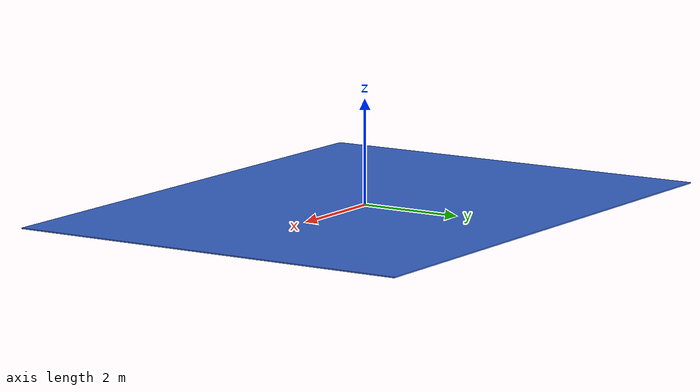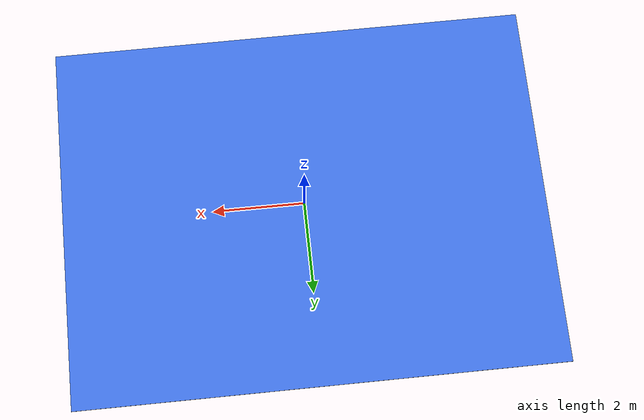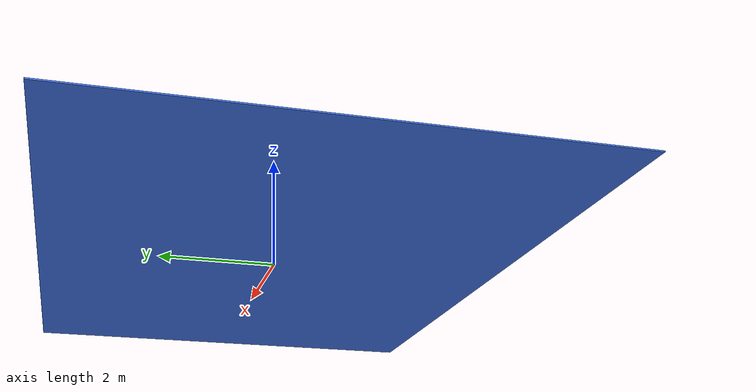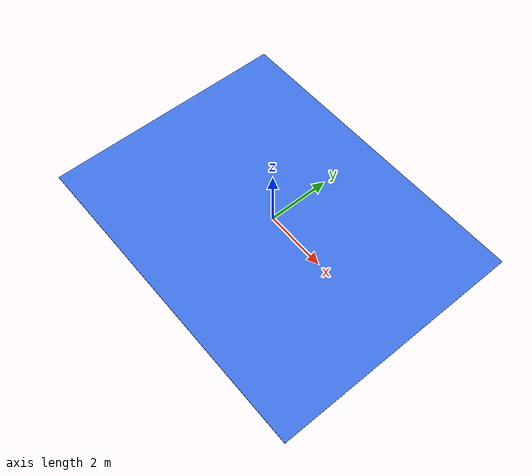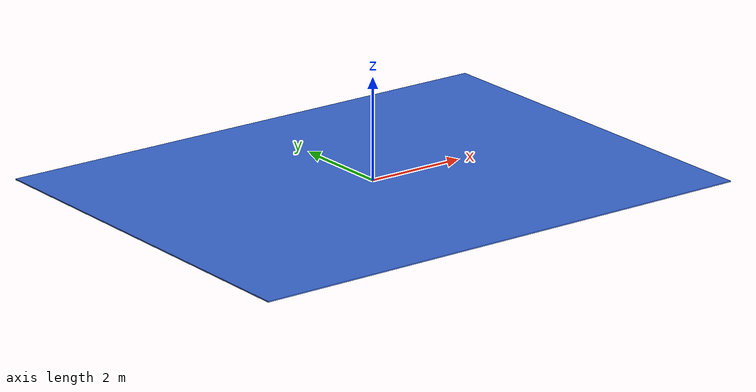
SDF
<?xml version="1.0"?>
<sdf version="1.10">
  <model name="level_terrain_b">
    <static>true</static>
    <link name="terrain_link">
      <visual name="terrain_visual">
        <geometry>
          <box>
            <size>10.5 8 0.02</size>
          </box>
        </geometry>
        <material>
          <diffuse>0.25 0.45 0.9 1</diffuse>
          <pbr>
            <metal>
              <albedo_map>model://level_terrain_b/materials/textures/level_b.png</albedo_map>
            </metal>
          </pbr>
        </material>
      </visual>
      <collision name="terrain_collision">
        <geometry>
          <box>
            <size>10.5 8 0.02</size>
          </box>
        </geometry>
      </collision>
    </link>
  </model>
</sdf>
